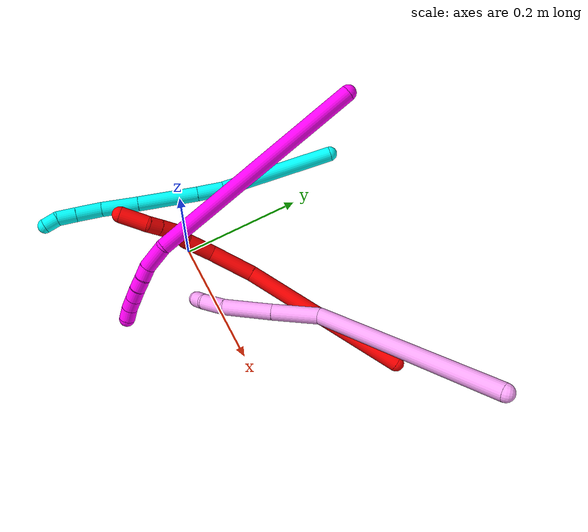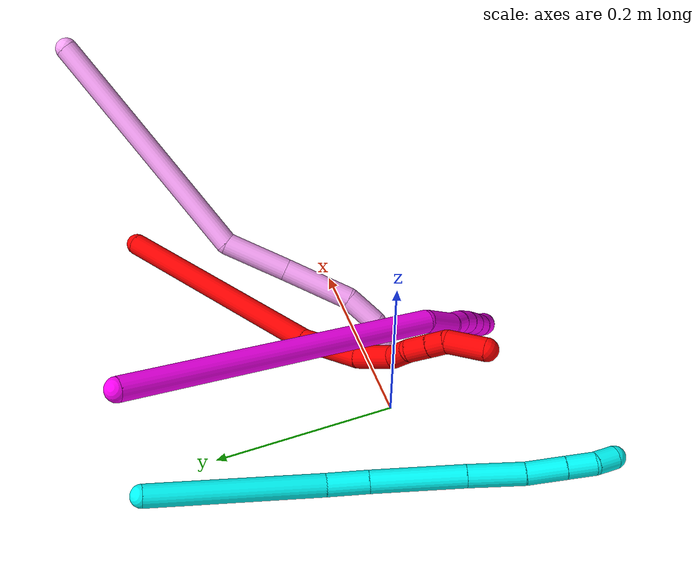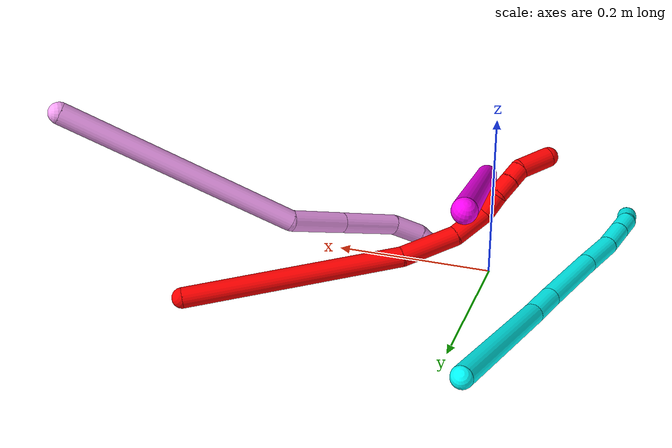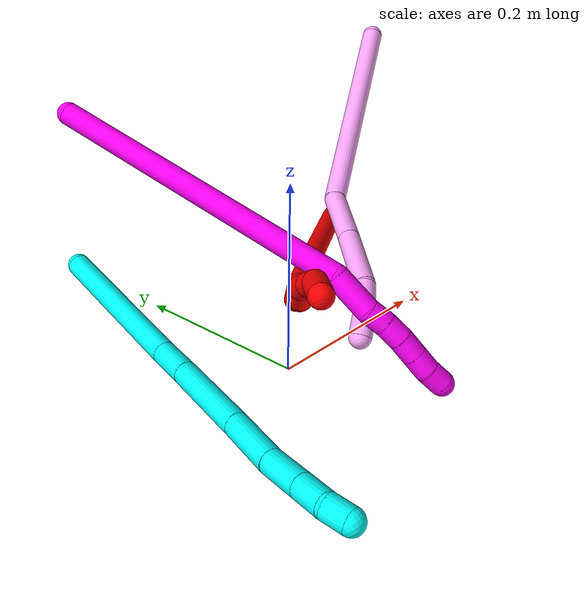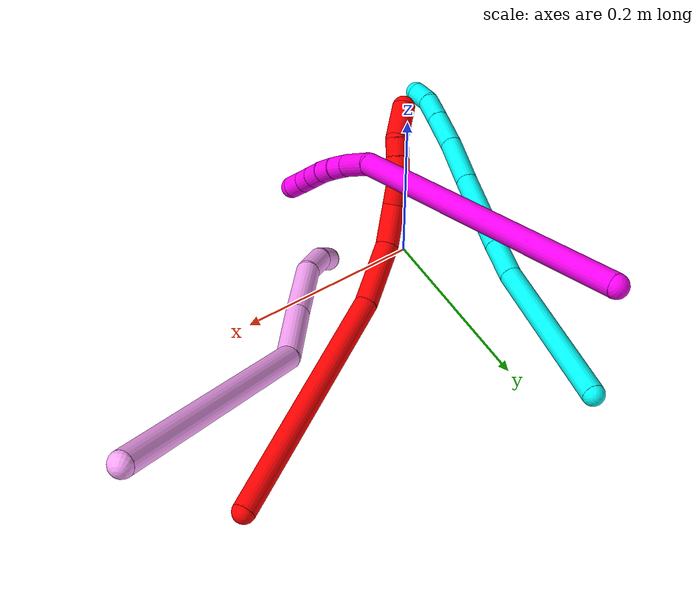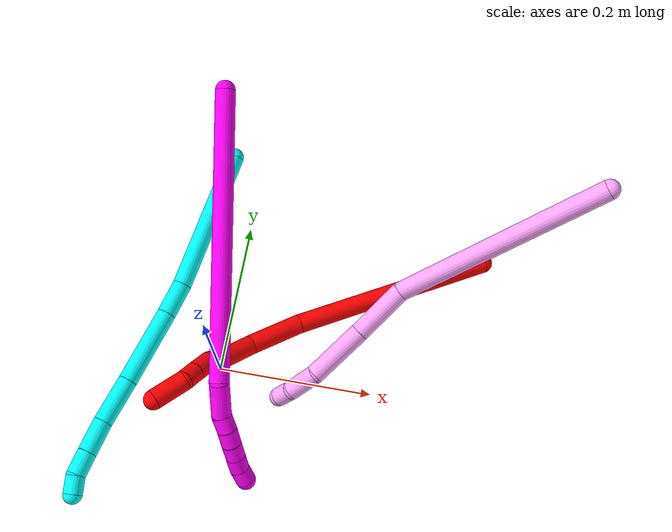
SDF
<sdf version="1.7">
 <world name="default">
  <model name="2">
   <static>0</static>
   <link name="2">
    <collision name="collision-cylinder-e_1_1_4">
     <pose>-0.092179 -0.034334 -0.089189 2.77412 -0.767345 -2.27874</pose>
     <geometry><cylinder><radius>0.0125</radius><length>0.265559</length></cylinder></geometry>
     <surface>
      <friction><ode><mu>1.16</mu><mu2>1.16</mu2><slip1>0</slip1><slip2>0</slip2></ode></friction>
      <contact><ode><kp>1e+06</kp><kd>1</kd><max_vel>0</max_vel><min_depth>0.001</min_depth></ode></contact>
     </surface>
    </collision>
    <visual name="visual-cylinder-e_1_1_4">
     <pose>-0.092179 -0.034334 -0.089189 2.77412 -0.767345 -2.27874</pose>
     <geometry><cylinder><radius>0.0125</radius><length>0.265559</length></cylinder></geometry>
     <material><ambient>1 0 0 1</ambient></material>
    </visual>
    <collision name="collision-cylinder-e_2_4_5">
     <pose>-0.208057 -0.084374 -0.200339 2.52075 -0.720374 -1.73054</pose>
     <geometry><cylinder><radius>0.0125</radius><length>0.071852</length></cylinder></geometry>
     <surface>
      <friction><ode><mu>1.16</mu><mu2>1.16</mu2><slip1>0</slip1><slip2>0</slip2></ode></friction>
      <contact><ode><kp>1e+06</kp><kd>1</kd><max_vel>0</max_vel><min_depth>0.001</min_depth></ode></contact>
     </surface>
    </collision>
    <visual name="visual-cylinder-e_2_4_5">
     <pose>-0.208057 -0.084374 -0.200339 2.52075 -0.720374 -1.73054</pose>
     <geometry><cylinder><radius>0.0125</radius><length>0.071852</length></cylinder></geometry>
     <material><ambient>1 0 0 1</ambient></material>
    </visual>
    <collision name="collision-cylinder-e_3_5_6">
     <pose>-0.246376 -0.114953 -0.23211 2.15386 -0.687191 -1.17312</pose>
     <geometry><cylinder><radius>0.0125</radius><length>0.046093</length></cylinder></geometry>
     <surface>
      <friction><ode><mu>1.16</mu><mu2>1.16</mu2><slip1>0</slip1><slip2>0</slip2></ode></friction>
      <contact><ode><kp>1e+06</kp><kd>1</kd><max_vel>0</max_vel><min_depth>0.001</min_depth></ode></contact>
     </surface>
    </collision>
    <visual name="visual-cylinder-e_3_5_6">
     <pose>-0.246376 -0.114953 -0.23211 2.15386 -0.687191 -1.17312</pose>
     <geometry><cylinder><radius>0.0125</radius><length>0.046093</length></cylinder></geometry>
     <material><ambient>1 0 0 1</ambient></material>
    </visual>
    <collision name="collision-cylinder-e_4_6_7">
     <pose>-0.270446 -0.139528 -0.242263 1.60631 -0.771889 -0.796977</pose>
     <geometry><cylinder><radius>0.0125</radius><length>0.027097</length></cylinder></geometry>
     <surface>
      <friction><ode><mu>1.16</mu><mu2>1.16</mu2><slip1>0</slip1><slip2>0</slip2></ode></friction>
      <contact><ode><kp>1e+06</kp><kd>1</kd><max_vel>0</max_vel><min_depth>0.001</min_depth></ode></contact>
     </surface>
    </collision>
    <visual name="visual-cylinder-e_4_6_7">
     <pose>-0.270446 -0.139528 -0.242263 1.60631 -0.771889 -0.796977</pose>
     <geometry><cylinder><radius>0.0125</radius><length>0.027097</length></cylinder></geometry>
     <material><ambient>1 0 0 1</ambient></material>
    </visual>
    <collision name="collision-cylinder-e_5_7_8">
     <pose>-0.286228 -0.159301 -0.24726 2.0035 -0.518674 -0.786387</pose>
     <geometry><cylinder><radius>0.0125</radius><length>0.025545</length></cylinder></geometry>
     <surface>
      <friction><ode><mu>1.16</mu><mu2>1.16</mu2><slip1>0</slip1><slip2>0</slip2></ode></friction>
      <contact><ode><kp>1e+06</kp><kd>1</kd><max_vel>0</max_vel><min_depth>0.001</min_depth></ode></contact>
     </surface>
    </collision>
    <visual name="visual-cylinder-e_5_7_8">
     <pose>-0.286228 -0.159301 -0.24726 2.0035 -0.518674 -0.786387</pose>
     <geometry><cylinder><radius>0.0125</radius><length>0.025545</length></cylinder></geometry>
     <material><ambient>1 0 0 1</ambient></material>
    </visual>
    <collision name="collision-cylinder-e_6_8_9">
     <pose>-0.297498 -0.177564 -0.255695 2.00347 -0.500695 -0.760617</pose>
     <geometry><cylinder><radius>0.0125</radius><length>0.020573</length></cylinder></geometry>
     <surface>
      <friction><ode><mu>1.16</mu><mu2>1.16</mu2><slip1>0</slip1><slip2>0</slip2></ode></friction>
      <contact><ode><kp>1e+06</kp><kd>1</kd><max_vel>0</max_vel><min_depth>0.001</min_depth></ode></contact>
     </surface>
    </collision>
    <visual name="visual-cylinder-e_6_8_9">
     <pose>-0.297498 -0.177564 -0.255695 2.00347 -0.500695 -0.760617</pose>
     <geometry><cylinder><radius>0.0125</radius><length>0.020573</length></cylinder></geometry>
     <material><ambient>1 0 0 1</ambient></material>
    </visual>
    <collision name="collision-cylinder-e_7_9_2">
     <pose>-0.314195 -0.196668 -0.274003 2.4973 -0.574465 -1.44897</pose>
     <geometry><cylinder><radius>0.0125</radius><length>0.043281</length></cylinder></geometry>
     <surface>
      <friction><ode><mu>1.16</mu><mu2>1.16</mu2><slip1>0</slip1><slip2>0</slip2></ode></friction>
      <contact><ode><kp>1e+06</kp><kd>1</kd><max_vel>0</max_vel><min_depth>0.001</min_depth></ode></contact>
     </surface>
    </collision>
    <visual name="visual-cylinder-e_7_9_2">
     <pose>-0.314195 -0.196668 -0.274003 2.4973 -0.574465 -1.44897</pose>
     <geometry><cylinder><radius>0.0125</radius><length>0.043281</length></cylinder></geometry>
     <material><ambient>1 0 0 1</ambient></material>
    </visual>
    <collision name="collision-sphere-2">
     <pose>-0.325954 -0.207579 -0.288528 0 -0 0</pose>
     <geometry><sphere><radius>0.0125</radius></sphere></geometry>
     <surface>
      <friction><ode><mu>1.16</mu><mu2>1.16</mu2><slip1>0</slip1><slip2>0</slip2></ode></friction>
      <contact><ode><kp>1e+06</kp><kd>1</kd><max_vel>0</max_vel><min_depth>0.001</min_depth></ode></contact>
     </surface>
    </collision>
    <visual name="visual-sphere-2">
     <pose>-0.325954 -0.207579 -0.288528 0 -0 0</pose>
     <geometry><sphere><radius>0.0125</radius></sphere></geometry>
     <material><ambient>1 0 0 1</ambient></material>
    </visual>
    <collision name="collision-sphere-9">
     <pose>-0.302436 -0.185756 -0.259478 0 -0 0</pose>
     <geometry><sphere><radius>0.0125</radius></sphere></geometry>
     <surface>
      <friction><ode><mu>1.16</mu><mu2>1.16</mu2><slip1>0</slip1><slip2>0</slip2></ode></friction>
      <contact><ode><kp>1e+06</kp><kd>1</kd><max_vel>0</max_vel><min_depth>0.001</min_depth></ode></contact>
     </surface>
    </collision>
    <visual name="visual-sphere-9">
     <pose>-0.302436 -0.185756 -0.259478 0 -0 0</pose>
     <geometry><sphere><radius>0.0125</radius></sphere></geometry>
     <material><ambient>1 0 0 1</ambient></material>
    </visual>
    <collision name="collision-sphere-4">
     <pose>-0.184358 -0.068667 -0.178377 0 -0 0</pose>
     <geometry><sphere><radius>0.0125</radius></sphere></geometry>
     <surface>
      <friction><ode><mu>1.16</mu><mu2>1.16</mu2><slip1>0</slip1><slip2>0</slip2></ode></friction>
      <contact><ode><kp>1e+06</kp><kd>1</kd><max_vel>0</max_vel><min_depth>0.001</min_depth></ode></contact>
     </surface>
    </collision>
    <visual name="visual-sphere-4">
     <pose>-0.184358 -0.068667 -0.178377 0 -0 0</pose>
     <geometry><sphere><radius>0.0125</radius></sphere></geometry>
     <material><ambient>1 0 0 1</ambient></material>
    </visual>
    <collision name="collision-sphere-1">
     <geometry><sphere><radius>0.0125</radius></sphere></geometry>
     <surface>
      <friction><ode><mu>1.16</mu><mu2>1.16</mu2><slip1>0</slip1><slip2>0</slip2></ode></friction>
      <contact><ode><kp>1e+06</kp><kd>1</kd><max_vel>0</max_vel><min_depth>0.001</min_depth></ode></contact>
     </surface>
    </collision>
    <visual name="visual-sphere-1">
     <geometry><sphere><radius>0.0125</radius></sphere></geometry>
     <material><ambient>1 0 0 1</ambient></material>
    </visual>
    <collision name="collision-sphere-8">
     <pose>-0.29256 -0.169371 -0.251911 0 -0 0</pose>
     <geometry><sphere><radius>0.0125</radius></sphere></geometry>
     <surface>
      <friction><ode><mu>1.16</mu><mu2>1.16</mu2><slip1>0</slip1><slip2>0</slip2></ode></friction>
      <contact><ode><kp>1e+06</kp><kd>1</kd><max_vel>0</max_vel><min_depth>0.001</min_depth></ode></contact>
     </surface>
    </collision>
    <visual name="visual-sphere-8">
     <pose>-0.29256 -0.169371 -0.251911 0 -0 0</pose>
     <geometry><sphere><radius>0.0125</radius></sphere></geometry>
     <material><ambient>1 0 0 1</ambient></material>
    </visual>
    <collision name="collision-sphere-5">
     <pose>-0.231757 -0.100081 -0.222301 0 -0 0</pose>
     <geometry><sphere><radius>0.0125</radius></sphere></geometry>
     <surface>
      <friction><ode><mu>1.16</mu><mu2>1.16</mu2><slip1>0</slip1><slip2>0</slip2></ode></friction>
      <contact><ode><kp>1e+06</kp><kd>1</kd><max_vel>0</max_vel><min_depth>0.001</min_depth></ode></contact>
     </surface>
    </collision>
    <visual name="visual-sphere-5">
     <pose>-0.231757 -0.100081 -0.222301 0 -0 0</pose>
     <geometry><sphere><radius>0.0125</radius></sphere></geometry>
     <material><ambient>1 0 0 1</ambient></material>
    </visual>
    <collision name="collision-sphere-6">
     <pose>-0.260996 -0.129825 -0.241919 0 -0 0</pose>
     <geometry><sphere><radius>0.0125</radius></sphere></geometry>
     <surface>
      <friction><ode><mu>1.16</mu><mu2>1.16</mu2><slip1>0</slip1><slip2>0</slip2></ode></friction>
      <contact><ode><kp>1e+06</kp><kd>1</kd><max_vel>0</max_vel><min_depth>0.001</min_depth></ode></contact>
     </surface>
    </collision>
    <visual name="visual-sphere-6">
     <pose>-0.260996 -0.129825 -0.241919 0 -0 0</pose>
     <geometry><sphere><radius>0.0125</radius></sphere></geometry>
     <material><ambient>1 0 0 1</ambient></material>
    </visual>
    <collision name="collision-sphere-7">
     <pose>-0.279896 -0.149231 -0.242608 0 -0 0</pose>
     <geometry><sphere><radius>0.0125</radius></sphere></geometry>
     <surface>
      <friction><ode><mu>1.16</mu><mu2>1.16</mu2><slip1>0</slip1><slip2>0</slip2></ode></friction>
      <contact><ode><kp>1e+06</kp><kd>1</kd><max_vel>0</max_vel><min_depth>0.001</min_depth></ode></contact>
     </surface>
    </collision>
    <visual name="visual-sphere-7">
     <pose>-0.279896 -0.149231 -0.242608 0 -0 0</pose>
     <geometry><sphere><radius>0.0125</radius></sphere></geometry>
     <material><ambient>1 0 0 1</ambient></material>
    </visual>
    <inertial>
     <pose>-0.170287 -0.080988 -0.157557 0 -0 0</pose>
     <mass>0.5</mass>
     <inertia>
      <ixx>-0.001659</ixx>
      <ixy>0</ixy>
      <ixz>0</ixz>
      <iyy>0.000356</iyy>
      <iyz>0</iyz>
      <izz>0.001542</izz>
     </inertia>
    </inertial>
   </link>
   <pose>0.320763 0.203291 0.011963 -0.83595 0.490634 -0.203249</pose>
  </model>
  <model name="3">
   <static>0</static>
   <link name="3">
    <collision name="collision-cylinder-e_1_1_4">
     <pose>-0.016214 -0.063018 -0.070031 2.40885 -0.170433 -0.438123</pose>
     <geometry><cylinder><radius>0.0125</radius><length>0.191191</length></cylinder></geometry>
     <surface>
      <friction><ode><mu>1.16</mu><mu2>1.16</mu2><slip1>0</slip1><slip2>0</slip2></ode></friction>
      <contact><ode><kp>1e+06</kp><kd>1</kd><max_vel>0</max_vel><min_depth>0.001</min_depth></ode></contact>
     </surface>
    </collision>
    <visual name="visual-cylinder-e_1_1_4">
     <pose>-0.016214 -0.063018 -0.070031 2.40885 -0.170433 -0.438123</pose>
     <geometry><cylinder><radius>0.0125</radius><length>0.191191</length></cylinder></geometry>
     <material><ambient>0.003922 1 0.996078 1</ambient></material>
    </visual>
    <collision name="collision-cylinder-e_2_4_5">
     <pose>-0.037588 -0.143071 -0.154335 2.26822 -0.228159 -0.481448</pose>
     <geometry><cylinder><radius>0.0125</radius><length>0.04563</length></cylinder></geometry>
     <surface>
      <friction><ode><mu>1.16</mu><mu2>1.16</mu2><slip1>0</slip1><slip2>0</slip2></ode></friction>
      <contact><ode><kp>1e+06</kp><kd>1</kd><max_vel>0</max_vel><min_depth>0.001</min_depth></ode></contact>
     </surface>
    </collision>
    <visual name="visual-cylinder-e_2_4_5">
     <pose>-0.037588 -0.143071 -0.154335 2.26822 -0.228159 -0.481448</pose>
     <geometry><cylinder><radius>0.0125</radius><length>0.04563</length></cylinder></geometry>
     <material><ambient>0.003922 1 0.996078 1</ambient></material>
    </visual>
    <collision name="collision-cylinder-e_3_5_6">
     <pose>-0.055653 -0.19859 -0.199773 2.25149 -0.254924 -0.524983</pose>
     <geometry><cylinder><radius>0.0125</radius><length>0.102349</length></cylinder></geometry>
     <surface>
      <friction><ode><mu>1.16</mu><mu2>1.16</mu2><slip1>0</slip1><slip2>0</slip2></ode></friction>
      <contact><ode><kp>1e+06</kp><kd>1</kd><max_vel>0</max_vel><min_depth>0.001</min_depth></ode></contact>
     </surface>
    </collision>
    <visual name="visual-cylinder-e_3_5_6">
     <pose>-0.055653 -0.19859 -0.199773 2.25149 -0.254924 -0.524983</pose>
     <geometry><cylinder><radius>0.0125</radius><length>0.102349</length></cylinder></geometry>
     <material><ambient>0.003922 1 0.996078 1</ambient></material>
    </visual>
    <collision name="collision-cylinder-e_4_6_7">
     <pose>-0.076922 -0.260198 -0.249716 2.25285 -0.273738 -0.563168</pose>
     <geometry><cylinder><radius>0.0125</radius><length>0.061879</length></cylinder></geometry>
     <surface>
      <friction><ode><mu>1.16</mu><mu2>1.16</mu2><slip1>0</slip1><slip2>0</slip2></ode></friction>
      <contact><ode><kp>1e+06</kp><kd>1</kd><max_vel>0</max_vel><min_depth>0.001</min_depth></ode></contact>
     </surface>
    </collision>
    <visual name="visual-cylinder-e_4_6_7">
     <pose>-0.076922 -0.260198 -0.249716 2.25285 -0.273738 -0.563168</pose>
     <geometry><cylinder><radius>0.0125</radius><length>0.061879</length></cylinder></geometry>
     <material><ambient>0.003922 1 0.996078 1</ambient></material>
    </visual>
    <collision name="collision-cylinder-e_5_7_8">
     <pose>-0.089291 -0.300574 -0.281121 2.20261 -0.185176 -0.362044</pose>
     <geometry><cylinder><radius>0.0125</radius><length>0.043504</length></cylinder></geometry>
     <surface>
      <friction><ode><mu>1.16</mu><mu2>1.16</mu2><slip1>0</slip1><slip2>0</slip2></ode></friction>
      <contact><ode><kp>1e+06</kp><kd>1</kd><max_vel>0</max_vel><min_depth>0.001</min_depth></ode></contact>
     </surface>
    </collision>
    <visual name="visual-cylinder-e_5_7_8">
     <pose>-0.089291 -0.300574 -0.281121 2.20261 -0.185176 -0.362044</pose>
     <geometry><cylinder><radius>0.0125</radius><length>0.043504</length></cylinder></geometry>
     <material><ambient>0.003922 1 0.996078 1</ambient></material>
    </visual>
    <collision name="collision-cylinder-e_6_8_9">
     <pose>-0.096089 -0.330183 -0.30308 2.21764 -0.178456 -0.355566</pose>
     <geometry><cylinder><radius>0.0125</radius><length>0.031467</length></cylinder></geometry>
     <surface>
      <friction><ode><mu>1.16</mu><mu2>1.16</mu2><slip1>0</slip1><slip2>0</slip2></ode></friction>
      <contact><ode><kp>1e+06</kp><kd>1</kd><max_vel>0</max_vel><min_depth>0.001</min_depth></ode></contact>
     </surface>
    </collision>
    <visual name="visual-cylinder-e_6_8_9">
     <pose>-0.096089 -0.330183 -0.30308 2.21764 -0.178456 -0.355566</pose>
     <geometry><cylinder><radius>0.0125</radius><length>0.031467</length></cylinder></geometry>
     <material><ambient>0.003922 1 0.996078 1</ambient></material>
    </visual>
    <collision name="collision-cylinder-e_7_9_2">
     <pose>-0.097892 -0.350549 -0.321277 2.40683 0.082597 0.213921</pose>
     <geometry><cylinder><radius>0.0125</radius><length>0.02398</length></cylinder></geometry>
     <surface>
      <friction><ode><mu>1.16</mu><mu2>1.16</mu2><slip1>0</slip1><slip2>0</slip2></ode></friction>
      <contact><ode><kp>1e+06</kp><kd>1</kd><max_vel>0</max_vel><min_depth>0.001</min_depth></ode></contact>
     </surface>
    </collision>
    <visual name="visual-cylinder-e_7_9_2">
     <pose>-0.097892 -0.350549 -0.321277 2.40683 0.082597 0.213921</pose>
     <geometry><cylinder><radius>0.0125</radius><length>0.02398</length></cylinder></geometry>
     <material><ambient>0.003922 1 0.996078 1</ambient></material>
    </visual>
    <collision name="collision-sphere-2">
     <pose>-0.096903 -0.35856 -0.330143 0 -0 0</pose>
     <geometry><sphere><radius>0.0125</radius></sphere></geometry>
     <surface>
      <friction><ode><mu>1.16</mu><mu2>1.16</mu2><slip1>0</slip1><slip2>0</slip2></ode></friction>
      <contact><ode><kp>1e+06</kp><kd>1</kd><max_vel>0</max_vel><min_depth>0.001</min_depth></ode></contact>
     </surface>
    </collision>
    <visual name="visual-sphere-2">
     <pose>-0.096903 -0.35856 -0.330143 0 -0 0</pose>
     <geometry><sphere><radius>0.0125</radius></sphere></geometry>
     <material><ambient>0.003922 1 0.996078 1</ambient></material>
    </visual>
    <collision name="collision-sphere-9">
     <pose>-0.098882 -0.342538 -0.312411 0 -0 0</pose>
     <geometry><sphere><radius>0.0125</radius></sphere></geometry>
     <surface>
      <friction><ode><mu>1.16</mu><mu2>1.16</mu2><slip1>0</slip1><slip2>0</slip2></ode></friction>
      <contact><ode><kp>1e+06</kp><kd>1</kd><max_vel>0</max_vel><min_depth>0.001</min_depth></ode></contact>
     </surface>
    </collision>
    <visual name="visual-sphere-9">
     <pose>-0.098882 -0.342538 -0.312411 0 -0 0</pose>
     <geometry><sphere><radius>0.0125</radius></sphere></geometry>
     <material><ambient>0.003922 1 0.996078 1</ambient></material>
    </visual>
    <collision name="collision-sphere-4">
     <pose>-0.032428 -0.126037 -0.140062 0 -0 0</pose>
     <geometry><sphere><radius>0.0125</radius></sphere></geometry>
     <surface>
      <friction><ode><mu>1.16</mu><mu2>1.16</mu2><slip1>0</slip1><slip2>0</slip2></ode></friction>
      <contact><ode><kp>1e+06</kp><kd>1</kd><max_vel>0</max_vel><min_depth>0.001</min_depth></ode></contact>
     </surface>
    </collision>
    <visual name="visual-sphere-4">
     <pose>-0.032428 -0.126037 -0.140062 0 -0 0</pose>
     <geometry><sphere><radius>0.0125</radius></sphere></geometry>
     <material><ambient>0.003922 1 0.996078 1</ambient></material>
    </visual>
    <collision name="collision-sphere-1">
     <geometry><sphere><radius>0.0125</radius></sphere></geometry>
     <surface>
      <friction><ode><mu>1.16</mu><mu2>1.16</mu2><slip1>0</slip1><slip2>0</slip2></ode></friction>
      <contact><ode><kp>1e+06</kp><kd>1</kd><max_vel>0</max_vel><min_depth>0.001</min_depth></ode></contact>
     </surface>
    </collision>
    <visual name="visual-sphere-1">
     <geometry><sphere><radius>0.0125</radius></sphere></geometry>
     <material><ambient>0.003922 1 0.996078 1</ambient></material>
    </visual>
    <collision name="collision-sphere-8">
     <pose>-0.093296 -0.317827 -0.293748 0 -0 0</pose>
     <geometry><sphere><radius>0.0125</radius></sphere></geometry>
     <surface>
      <friction><ode><mu>1.16</mu><mu2>1.16</mu2><slip1>0</slip1><slip2>0</slip2></ode></friction>
      <contact><ode><kp>1e+06</kp><kd>1</kd><max_vel>0</max_vel><min_depth>0.001</min_depth></ode></contact>
     </surface>
    </collision>
    <visual name="visual-sphere-8">
     <pose>-0.093296 -0.317827 -0.293748 0 -0 0</pose>
     <geometry><sphere><radius>0.0125</radius></sphere></geometry>
     <material><ambient>0.003922 1 0.996078 1</ambient></material>
    </visual>
    <collision name="collision-sphere-5">
     <pose>-0.042749 -0.160106 -0.168608 0 -0 0</pose>
     <geometry><sphere><radius>0.0125</radius></sphere></geometry>
     <surface>
      <friction><ode><mu>1.16</mu><mu2>1.16</mu2><slip1>0</slip1><slip2>0</slip2></ode></friction>
      <contact><ode><kp>1e+06</kp><kd>1</kd><max_vel>0</max_vel><min_depth>0.001</min_depth></ode></contact>
     </surface>
    </collision>
    <visual name="visual-sphere-5">
     <pose>-0.042749 -0.160106 -0.168608 0 -0 0</pose>
     <geometry><sphere><radius>0.0125</radius></sphere></geometry>
     <material><ambient>0.003922 1 0.996078 1</ambient></material>
    </visual>
    <collision name="collision-sphere-6">
     <pose>-0.068558 -0.237074 -0.230938 0 -0 0</pose>
     <geometry><sphere><radius>0.0125</radius></sphere></geometry>
     <surface>
      <friction><ode><mu>1.16</mu><mu2>1.16</mu2><slip1>0</slip1><slip2>0</slip2></ode></friction>
      <contact><ode><kp>1e+06</kp><kd>1</kd><max_vel>0</max_vel><min_depth>0.001</min_depth></ode></contact>
     </surface>
    </collision>
    <visual name="visual-sphere-6">
     <pose>-0.068558 -0.237074 -0.230938 0 -0 0</pose>
     <geometry><sphere><radius>0.0125</radius></sphere></geometry>
     <material><ambient>0.003922 1 0.996078 1</ambient></material>
    </visual>
    <collision name="collision-sphere-7">
     <pose>-0.085286 -0.283321 -0.268494 0 -0 0</pose>
     <geometry><sphere><radius>0.0125</radius></sphere></geometry>
     <surface>
      <friction><ode><mu>1.16</mu><mu2>1.16</mu2><slip1>0</slip1><slip2>0</slip2></ode></friction>
      <contact><ode><kp>1e+06</kp><kd>1</kd><max_vel>0</max_vel><min_depth>0.001</min_depth></ode></contact>
     </surface>
    </collision>
    <visual name="visual-sphere-7">
     <pose>-0.085286 -0.283321 -0.268494 0 -0 0</pose>
     <geometry><sphere><radius>0.0125</radius></sphere></geometry>
     <material><ambient>0.003922 1 0.996078 1</ambient></material>
    </visual>
    <inertial>
     <pose>-0.049053 -0.17375 -0.171603 0 -0 0</pose>
     <mass>0.5</mass>
     <inertia>
      <ixx>0.000325</ixx>
      <ixy>0</ixy>
      <ixz>0</ixz>
      <iyy>-0.000772</iyy>
      <iyz>0</iyz>
      <izz>0.000602</izz>
     </inertia>
    </inertial>
   </link>
   <pose>-0.038393 0.288462 0.035919 -0.711498 -0.074456 -0.029238</pose>
  </model>
  <model name="4">
   <static>0</static>
   <link name="4">
    <collision name="collision-cylinder-e_1_1_4">
     <pose>-0.012187 -0.061697 -0.127887 2.6921 -0.085617 -0.370443</pose>
     <geometry><cylinder><radius>0.0125</radius><length>0.285027</length></cylinder></geometry>
     <surface>
      <friction><ode><mu>1.16</mu><mu2>1.16</mu2><slip1>0</slip1><slip2>0</slip2></ode></friction>
      <contact><ode><kp>1e+06</kp><kd>1</kd><max_vel>0</max_vel><min_depth>0.001</min_depth></ode></contact>
     </surface>
    </collision>
    <visual name="visual-cylinder-e_1_1_4">
     <pose>-0.012187 -0.061697 -0.127887 2.6921 -0.085617 -0.370443</pose>
     <geometry><cylinder><radius>0.0125</radius><length>0.285027</length></cylinder></geometry>
     <material><ambient>1 0.65098 0.996078 1</ambient></material>
    </visual>
    <collision name="collision-cylinder-e_2_4_5">
     <pose>-0.029979 -0.122873 -0.291939 -3.1272 -0.153771 2.95534</pose>
     <geometry><cylinder><radius>0.0125</radius><length>0.073202</length></cylinder></geometry>
     <surface>
      <friction><ode><mu>1.16</mu><mu2>1.16</mu2><slip1>0</slip1><slip2>0</slip2></ode></friction>
      <contact><ode><kp>1e+06</kp><kd>1</kd><max_vel>0</max_vel><min_depth>0.001</min_depth></ode></contact>
     </surface>
    </collision>
    <visual name="visual-cylinder-e_2_4_5">
     <pose>-0.029979 -0.122873 -0.291939 -3.1272 -0.153771 2.95534</pose>
     <geometry><cylinder><radius>0.0125</radius><length>0.073202</length></cylinder></geometry>
     <material><ambient>1 0.65098 0.996078 1</ambient></material>
    </visual>
    <collision name="collision-cylinder-e_3_5_6">
     <pose>-0.040762 -0.122147 -0.366986 -3.13629 -0.132365 3.06165</pose>
     <geometry><cylinder><radius>0.0125</radius><length>0.078452</length></cylinder></geometry>
     <surface>
      <friction><ode><mu>1.16</mu><mu2>1.16</mu2><slip1>0</slip1><slip2>0</slip2></ode></friction>
      <contact><ode><kp>1e+06</kp><kd>1</kd><max_vel>0</max_vel><min_depth>0.001</min_depth></ode></contact>
     </surface>
    </collision>
    <visual name="visual-cylinder-e_3_5_6">
     <pose>-0.040762 -0.122147 -0.366986 -3.13629 -0.132365 3.06165</pose>
     <geometry><cylinder><radius>0.0125</radius><length>0.078452</length></cylinder></geometry>
     <material><ambient>1 0.65098 0.996078 1</ambient></material>
    </visual>
    <collision name="collision-cylinder-e_4_6_7">
     <pose>-0.04893 -0.127791 -0.424874 2.84299 -0.149288 -0.922734</pose>
     <geometry><cylinder><radius>0.0125</radius><length>0.040218</length></cylinder></geometry>
     <surface>
      <friction><ode><mu>1.16</mu><mu2>1.16</mu2><slip1>0</slip1><slip2>0</slip2></ode></friction>
      <contact><ode><kp>1e+06</kp><kd>1</kd><max_vel>0</max_vel><min_depth>0.001</min_depth></ode></contact>
     </surface>
    </collision>
    <visual name="visual-cylinder-e_4_6_7">
     <pose>-0.04893 -0.127791 -0.424874 2.84299 -0.149288 -0.922734</pose>
     <geometry><cylinder><radius>0.0125</radius><length>0.040218</length></cylinder></geometry>
     <material><ambient>1 0.65098 0.996078 1</ambient></material>
    </visual>
    <collision name="collision-cylinder-e_5_7_2">
     <pose>-0.055001 -0.140267 -0.452826 2.5041 -0.269926 -0.780729</pose>
     <geometry><cylinder><radius>0.0125</radius><length>0.023101</length></cylinder></geometry>
     <surface>
      <friction><ode><mu>1.16</mu><mu2>1.16</mu2><slip1>0</slip1><slip2>0</slip2></ode></friction>
      <contact><ode><kp>1e+06</kp><kd>1</kd><max_vel>0</max_vel><min_depth>0.001</min_depth></ode></contact>
     </surface>
    </collision>
    <visual name="visual-cylinder-e_5_7_2">
     <pose>-0.055001 -0.140267 -0.452826 2.5041 -0.269926 -0.780729</pose>
     <geometry><cylinder><radius>0.0125</radius><length>0.023101</length></cylinder></geometry>
     <material><ambient>1 0.65098 0.996078 1</ambient></material>
    </visual>
    <collision name="collision-sphere-2">
     <pose>-0.058081 -0.146892 -0.461772 0 -0 0</pose>
     <geometry><sphere><radius>0.0125</radius></sphere></geometry>
     <surface>
      <friction><ode><mu>1.16</mu><mu2>1.16</mu2><slip1>0</slip1><slip2>0</slip2></ode></friction>
      <contact><ode><kp>1e+06</kp><kd>1</kd><max_vel>0</max_vel><min_depth>0.001</min_depth></ode></contact>
     </surface>
    </collision>
    <visual name="visual-sphere-2">
     <pose>-0.058081 -0.146892 -0.461772 0 -0 0</pose>
     <geometry><sphere><radius>0.0125</radius></sphere></geometry>
     <material><ambient>1 0.65098 0.996078 1</ambient></material>
    </visual>
    <collision name="collision-sphere-7">
     <pose>-0.051921 -0.133641 -0.44388 0 -0 0</pose>
     <geometry><sphere><radius>0.0125</radius></sphere></geometry>
     <surface>
      <friction><ode><mu>1.16</mu><mu2>1.16</mu2><slip1>0</slip1><slip2>0</slip2></ode></friction>
      <contact><ode><kp>1e+06</kp><kd>1</kd><max_vel>0</max_vel><min_depth>0.001</min_depth></ode></contact>
     </surface>
    </collision>
    <visual name="visual-sphere-7">
     <pose>-0.051921 -0.133641 -0.44388 0 -0 0</pose>
     <geometry><sphere><radius>0.0125</radius></sphere></geometry>
     <material><ambient>1 0.65098 0.996078 1</ambient></material>
    </visual>
    <collision name="collision-sphere-6">
     <pose>-0.045939 -0.121941 -0.405869 0 -0 0</pose>
     <geometry><sphere><radius>0.0125</radius></sphere></geometry>
     <surface>
      <friction><ode><mu>1.16</mu><mu2>1.16</mu2><slip1>0</slip1><slip2>0</slip2></ode></friction>
      <contact><ode><kp>1e+06</kp><kd>1</kd><max_vel>0</max_vel><min_depth>0.001</min_depth></ode></contact>
     </surface>
    </collision>
    <visual name="visual-sphere-6">
     <pose>-0.045939 -0.121941 -0.405869 0 -0 0</pose>
     <geometry><sphere><radius>0.0125</radius></sphere></geometry>
     <material><ambient>1 0.65098 0.996078 1</ambient></material>
    </visual>
    <collision name="collision-sphere-5">
     <pose>-0.035585 -0.122353 -0.328104 0 -0 0</pose>
     <geometry><sphere><radius>0.0125</radius></sphere></geometry>
     <surface>
      <friction><ode><mu>1.16</mu><mu2>1.16</mu2><slip1>0</slip1><slip2>0</slip2></ode></friction>
      <contact><ode><kp>1e+06</kp><kd>1</kd><max_vel>0</max_vel><min_depth>0.001</min_depth></ode></contact>
     </surface>
    </collision>
    <visual name="visual-sphere-5">
     <pose>-0.035585 -0.122353 -0.328104 0 -0 0</pose>
     <geometry><sphere><radius>0.0125</radius></sphere></geometry>
     <material><ambient>1 0.65098 0.996078 1</ambient></material>
    </visual>
    <collision name="collision-sphere-1">
     <geometry><sphere><radius>0.0125</radius></sphere></geometry>
     <surface>
      <friction><ode><mu>1.16</mu><mu2>1.16</mu2><slip1>0</slip1><slip2>0</slip2></ode></friction>
      <contact><ode><kp>1e+06</kp><kd>1</kd><max_vel>0</max_vel><min_depth>0.001</min_depth></ode></contact>
     </surface>
    </collision>
    <visual name="visual-sphere-1">
     <geometry><sphere><radius>0.0125</radius></sphere></geometry>
     <material><ambient>1 0.65098 0.996078 1</ambient></material>
    </visual>
    <collision name="collision-sphere-4">
     <pose>-0.024373 -0.123394 -0.255774 0 -0 0</pose>
     <geometry><sphere><radius>0.0125</radius></sphere></geometry>
     <surface>
      <friction><ode><mu>1.16</mu><mu2>1.16</mu2><slip1>0</slip1><slip2>0</slip2></ode></friction>
      <contact><ode><kp>1e+06</kp><kd>1</kd><max_vel>0</max_vel><min_depth>0.001</min_depth></ode></contact>
     </surface>
    </collision>
    <visual name="visual-sphere-4">
     <pose>-0.024373 -0.123394 -0.255774 0 -0 0</pose>
     <geometry><sphere><radius>0.0125</radius></sphere></geometry>
     <material><ambient>1 0.65098 0.996078 1</ambient></material>
    </visual>
    <inertial>
     <pose>-0.024209 -0.089085 -0.228322 0 -0 0</pose>
     <mass>0.5</mass>
     <inertia>
      <ixx>0.001029</ixx>
      <ixy>0</ixy>
      <ixz>0</ixz>
      <iyy>-0.002238</iyy>
      <iyz>0</iyz>
      <izz>0.000985</izz>
     </inertia>
    </inertial>
   </link>
   <pose>0.432396 0.231788 0.236131 1.29644 -0.817719 2.57293</pose>
  </model>
  <model name="10">
   <static>0</static>
   <link name="10">
    <collision name="collision-cylinder-e_1_1_4">
     <pose>0.005167 -0.121846 -0.128666 2.38341 0.029149 0.073145</pose>
     <geometry><cylinder><radius>0.0125</radius><length>0.35456</length></cylinder></geometry>
     <surface>
      <friction><ode><mu>1.16</mu><mu2>1.16</mu2><slip1>0</slip1><slip2>0</slip2></ode></friction>
      <contact><ode><kp>1e+06</kp><kd>1</kd><max_vel>0</max_vel><min_depth>0.001</min_depth></ode></contact>
     </surface>
    </collision>
    <visual name="visual-cylinder-e_1_1_4">
     <pose>0.005167 -0.121846 -0.128666 2.38341 0.029149 0.073145</pose>
     <geometry><cylinder><radius>0.0125</radius><length>0.35456</length></cylinder></geometry>
     <material><ambient>1 0 0.964706 1</ambient></material>
    </visual>
    <collision name="collision-cylinder-e_2_4_5">
     <pose>0.008642 -0.251935 -0.277539 2.75433 -0.077351 -0.389655</pose>
     <geometry><cylinder><radius>0.0125</radius><length>0.043777</length></cylinder></geometry>
     <surface>
      <friction><ode><mu>1.16</mu><mu2>1.16</mu2><slip1>0</slip1><slip2>0</slip2></ode></friction>
      <contact><ode><kp>1e+06</kp><kd>1</kd><max_vel>0</max_vel><min_depth>0.001</min_depth></ode></contact>
     </surface>
    </collision>
    <visual name="visual-cylinder-e_2_4_5">
     <pose>0.008642 -0.251935 -0.277539 2.75433 -0.077351 -0.389655</pose>
     <geometry><cylinder><radius>0.0125</radius><length>0.043777</length></cylinder></geometry>
     <material><ambient>1 0 0.964706 1</ambient></material>
    </visual>
    <collision name="collision-cylinder-e_3_5_6">
     <pose>0.008841 -0.26313 -0.307353 2.84334 0.185926 1.11079</pose>
     <geometry><cylinder><radius>0.0125</radius><length>0.020454</length></cylinder></geometry>
     <surface>
      <friction><ode><mu>1.16</mu><mu2>1.16</mu2><slip1>0</slip1><slip2>0</slip2></ode></friction>
      <contact><ode><kp>1e+06</kp><kd>1</kd><max_vel>0</max_vel><min_depth>0.001</min_depth></ode></contact>
     </surface>
    </collision>
    <visual name="visual-cylinder-e_3_5_6">
     <pose>0.008841 -0.26313 -0.307353 2.84334 0.185926 1.11079</pose>
     <geometry><cylinder><radius>0.0125</radius><length>0.020454</length></cylinder></geometry>
     <material><ambient>1 0 0.964706 1</ambient></material>
    </visual>
    <collision name="collision-cylinder-e_4_6_7">
     <pose>0.011484 -0.268581 -0.326913 2.89567 0.073124 0.57553</pose>
     <geometry><cylinder><radius>0.0125</radius><length>0.02058</length></cylinder></geometry>
     <surface>
      <friction><ode><mu>1.16</mu><mu2>1.16</mu2><slip1>0</slip1><slip2>0</slip2></ode></friction>
      <contact><ode><kp>1e+06</kp><kd>1</kd><max_vel>0</max_vel><min_depth>0.001</min_depth></ode></contact>
     </surface>
    </collision>
    <visual name="visual-cylinder-e_4_6_7">
     <pose>0.011484 -0.268581 -0.326913 2.89567 0.073124 0.57553</pose>
     <geometry><cylinder><radius>0.0125</radius><length>0.02058</length></cylinder></geometry>
     <material><ambient>1 0 0.964706 1</ambient></material>
    </visual>
    <collision name="collision-cylinder-e_5_7_8">
     <pose>0.01243 -0.272598 -0.34704 2.99346 0.018932 0.253783</pose>
     <geometry><cylinder><radius>0.0125</radius><length>0.020576</length></cylinder></geometry>
     <surface>
      <friction><ode><mu>1.16</mu><mu2>1.16</mu2><slip1>0</slip1><slip2>0</slip2></ode></friction>
      <contact><ode><kp>1e+06</kp><kd>1</kd><max_vel>0</max_vel><min_depth>0.001</min_depth></ode></contact>
     </surface>
    </collision>
    <visual name="visual-cylinder-e_5_7_8">
     <pose>0.01243 -0.272598 -0.34704 2.99346 0.018932 0.253783</pose>
     <geometry><cylinder><radius>0.0125</radius><length>0.020576</length></cylinder></geometry>
     <material><ambient>1 0 0.964706 1</ambient></material>
    </visual>
    <collision name="collision-cylinder-e_6_8_9">
     <pose>0.012781 -0.275553 -0.367116 2.99751 0.015592 0.215227</pose>
     <geometry><cylinder><radius>0.0125</radius><length>0.020016</length></cylinder></geometry>
     <surface>
      <friction><ode><mu>1.16</mu><mu2>1.16</mu2><slip1>0</slip1><slip2>0</slip2></ode></friction>
      <contact><ode><kp>1e+06</kp><kd>1</kd><max_vel>0</max_vel><min_depth>0.001</min_depth></ode></contact>
     </surface>
    </collision>
    <visual name="visual-cylinder-e_6_8_9">
     <pose>0.012781 -0.275553 -0.367116 2.99751 0.015592 0.215227</pose>
     <geometry><cylinder><radius>0.0125</radius><length>0.020016</length></cylinder></geometry>
     <material><ambient>1 0 0.964706 1</ambient></material>
    </visual>
    <collision name="collision-cylinder-e_7_9_2">
     <pose>0.01489 -0.278149 -0.386777 3.02331 0.196232 2.05849</pose>
     <geometry><cylinder><radius>0.0125</radius><length>0.020039</length></cylinder></geometry>
     <surface>
      <friction><ode><mu>1.16</mu><mu2>1.16</mu2><slip1>0</slip1><slip2>0</slip2></ode></friction>
      <contact><ode><kp>1e+06</kp><kd>1</kd><max_vel>0</max_vel><min_depth>0.001</min_depth></ode></contact>
     </surface>
    </collision>
    <visual name="visual-cylinder-e_7_9_2">
     <pose>0.01489 -0.278149 -0.386777 3.02331 0.196232 2.05849</pose>
     <geometry><cylinder><radius>0.0125</radius><length>0.020039</length></cylinder></geometry>
     <material><ambient>1 0 0.964706 1</ambient></material>
    </visual>
    <collision name="collision-sphere-2">
     <pose>0.016844 -0.279309 -0.396536 0 -0 0</pose>
     <geometry><sphere><radius>0.0125</radius></sphere></geometry>
     <surface>
      <friction><ode><mu>1.16</mu><mu2>1.16</mu2><slip1>0</slip1><slip2>0</slip2></ode></friction>
      <contact><ode><kp>1e+06</kp><kd>1</kd><max_vel>0</max_vel><min_depth>0.001</min_depth></ode></contact>
     </surface>
    </collision>
    <visual name="visual-sphere-2">
     <pose>0.016844 -0.279309 -0.396536 0 -0 0</pose>
     <geometry><sphere><radius>0.0125</radius></sphere></geometry>
     <material><ambient>1 0 0.964706 1</ambient></material>
    </visual>
    <collision name="collision-sphere-9">
     <pose>0.012937 -0.276989 -0.377019 0 -0 0</pose>
     <geometry><sphere><radius>0.0125</radius></sphere></geometry>
     <surface>
      <friction><ode><mu>1.16</mu><mu2>1.16</mu2><slip1>0</slip1><slip2>0</slip2></ode></friction>
      <contact><ode><kp>1e+06</kp><kd>1</kd><max_vel>0</max_vel><min_depth>0.001</min_depth></ode></contact>
     </surface>
    </collision>
    <visual name="visual-sphere-9">
     <pose>0.012937 -0.276989 -0.377019 0 -0 0</pose>
     <geometry><sphere><radius>0.0125</radius></sphere></geometry>
     <material><ambient>1 0 0.964706 1</ambient></material>
    </visual>
    <collision name="collision-sphere-4">
     <pose>0.010334 -0.243693 -0.257332 0 -0 0</pose>
     <geometry><sphere><radius>0.0125</radius></sphere></geometry>
     <surface>
      <friction><ode><mu>1.16</mu><mu2>1.16</mu2><slip1>0</slip1><slip2>0</slip2></ode></friction>
      <contact><ode><kp>1e+06</kp><kd>1</kd><max_vel>0</max_vel><min_depth>0.001</min_depth></ode></contact>
     </surface>
    </collision>
    <visual name="visual-sphere-4">
     <pose>0.010334 -0.243693 -0.257332 0 -0 0</pose>
     <geometry><sphere><radius>0.0125</radius></sphere></geometry>
     <material><ambient>1 0 0.964706 1</ambient></material>
    </visual>
    <collision name="collision-sphere-1">
     <geometry><sphere><radius>0.0125</radius></sphere></geometry>
     <surface>
      <friction><ode><mu>1.16</mu><mu2>1.16</mu2><slip1>0</slip1><slip2>0</slip2></ode></friction>
      <contact><ode><kp>1e+06</kp><kd>1</kd><max_vel>0</max_vel><min_depth>0.001</min_depth></ode></contact>
     </surface>
    </collision>
    <visual name="visual-sphere-1">
     <geometry><sphere><radius>0.0125</radius></sphere></geometry>
     <material><ambient>1 0 0.964706 1</ambient></material>
    </visual>
    <collision name="collision-sphere-8">
     <pose>0.012625 -0.274116 -0.357213 0 -0 0</pose>
     <geometry><sphere><radius>0.0125</radius></sphere></geometry>
     <surface>
      <friction><ode><mu>1.16</mu><mu2>1.16</mu2><slip1>0</slip1><slip2>0</slip2></ode></friction>
      <contact><ode><kp>1e+06</kp><kd>1</kd><max_vel>0</max_vel><min_depth>0.001</min_depth></ode></contact>
     </surface>
    </collision>
    <visual name="visual-sphere-8">
     <pose>0.012625 -0.274116 -0.357213 0 -0 0</pose>
     <geometry><sphere><radius>0.0125</radius></sphere></geometry>
     <material><ambient>1 0 0.964706 1</ambient></material>
    </visual>
    <collision name="collision-sphere-5">
     <pose>0.006951 -0.260176 -0.297746 0 -0 0</pose>
     <geometry><sphere><radius>0.0125</radius></sphere></geometry>
     <surface>
      <friction><ode><mu>1.16</mu><mu2>1.16</mu2><slip1>0</slip1><slip2>0</slip2></ode></friction>
      <contact><ode><kp>1e+06</kp><kd>1</kd><max_vel>0</max_vel><min_depth>0.001</min_depth></ode></contact>
     </surface>
    </collision>
    <visual name="visual-sphere-5">
     <pose>0.006951 -0.260176 -0.297746 0 -0 0</pose>
     <geometry><sphere><radius>0.0125</radius></sphere></geometry>
     <material><ambient>1 0 0.964706 1</ambient></material>
    </visual>
    <collision name="collision-sphere-6">
     <pose>0.010732 -0.266083 -0.316959 0 -0 0</pose>
     <geometry><sphere><radius>0.0125</radius></sphere></geometry>
     <surface>
      <friction><ode><mu>1.16</mu><mu2>1.16</mu2><slip1>0</slip1><slip2>0</slip2></ode></friction>
      <contact><ode><kp>1e+06</kp><kd>1</kd><max_vel>0</max_vel><min_depth>0.001</min_depth></ode></contact>
     </surface>
    </collision>
    <visual name="visual-sphere-6">
     <pose>0.010732 -0.266083 -0.316959 0 -0 0</pose>
     <geometry><sphere><radius>0.0125</radius></sphere></geometry>
     <material><ambient>1 0 0.964706 1</ambient></material>
    </visual>
    <collision name="collision-sphere-7">
     <pose>0.012235 -0.27108 -0.336867 0 -0 0</pose>
     <geometry><sphere><radius>0.0125</radius></sphere></geometry>
     <surface>
      <friction><ode><mu>1.16</mu><mu2>1.16</mu2><slip1>0</slip1><slip2>0</slip2></ode></friction>
      <contact><ode><kp>1e+06</kp><kd>1</kd><max_vel>0</max_vel><min_depth>0.001</min_depth></ode></contact>
     </surface>
    </collision>
    <visual name="visual-sphere-7">
     <pose>0.012235 -0.27108 -0.336867 0 -0 0</pose>
     <geometry><sphere><radius>0.0125</radius></sphere></geometry>
     <material><ambient>1 0 0.964706 1</ambient></material>
    </visual>
    <inertial>
     <pose>0.006875 -0.163676 -0.186046 0 -0 0</pose>
     <mass>0.5</mass>
     <inertia>
      <ixx>0.004003</ixx>
      <ixy>0</ixy>
      <ixz>0</ixz>
      <iyy>-0.002454</iyy>
      <iyz>0</iyz>
      <izz>0.002427</izz>
     </inertia>
    </inertial>
   </link>
   <pose>-0.03432 0.291095 0.215786 -0.481363 -0.364023 0.007028</pose>
  </model>
 </world>
</sdf>
